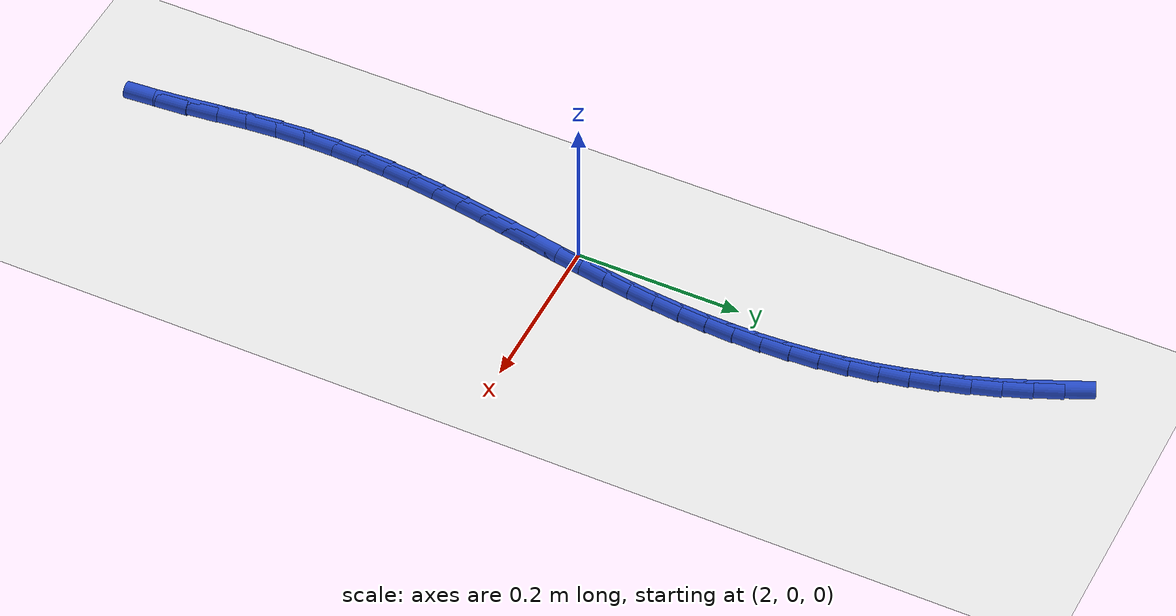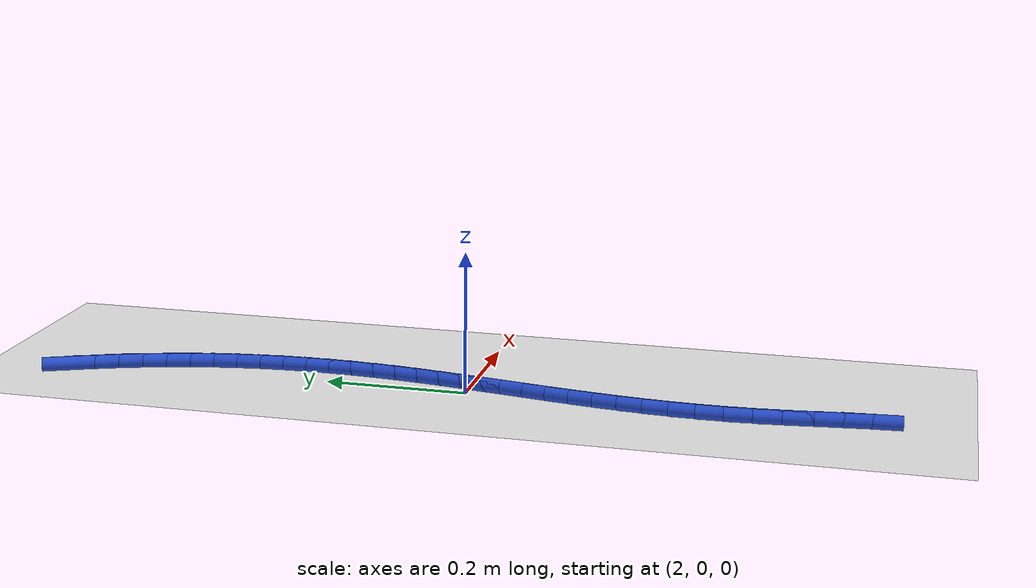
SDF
<sdf version="1.6">
 <world name="default">
  <model name="ground_plane">
   <static>1</static>
   <link name="link">
    <collision name="collision">
     <geometry><plane><normal>0 0 1</normal><size>100 100</size></plane></geometry>
     <surface><friction><ode><mu>100</mu><mu2>50</mu2></ode></friction></surface>
    </collision>
    <visual name="visual">
     <cast_shadows>0</cast_shadows>
     <geometry><plane><normal>0 0 1</normal><size>100 100</size></plane></geometry>
     <material>
      <script><uri>file://media/materials/scripts/gazebo.material</uri><name>Gazebo/WhiteGlow</name></script>
     </material>
    </visual>
   </link>
  </model>
  <model name="line">
   <link name="link_82">
    <pose>1.9597374480407297 0.5726535189243772 0.01 0 1.57 -1.1519916945636328</pose>
    <collision name="collision">
     <geometry><cylinder><radius>0.01</radius><length>0.08</length></cylinder></geometry>
    </collision>
    <visual name="visual">
     <material>
      <script><name>Gazebo/Blue</name><uri>file://media/materials/scripts/gazebo.material</uri></script>
     </material>
     <geometry><cylinder><radius>0.01</radius><length>0.08</length></cylinder></geometry>
    </visual>
   </link>
   <link name="link_83">
    <pose>1.973673618210855 0.5413461007436475 0.01 0 1.57 -1.1895600078728117</pose>
    <collision name="collision">
     <geometry><cylinder><radius>0.01</radius><length>0.08</length></cylinder></geometry>
    </collision>
    <visual name="visual">
     <material>
      <script><name>Gazebo/Blue</name><uri>file://media/materials/scripts/gazebo.material</uri></script>
     </material>
     <geometry><cylinder><radius>0.01</radius><length>0.08</length></cylinder></geometry>
    </visual>
   </link>
   <link name="link_84">
    <pose>1.9864185813727326 0.5095510173341959 0.01 0 1.57 -1.2279677283645591</pose>
    <collision name="collision">
     <geometry><cylinder><radius>0.01</radius><length>0.08</length></cylinder></geometry>
    </collision>
    <visual name="visual">
     <material>
      <script><name>Gazebo/Blue</name><uri>file://media/materials/scripts/gazebo.material</uri></script>
     </material>
     <geometry><cylinder><radius>0.01</radius><length>0.08</length></cylinder></geometry>
    </visual>
   </link>
   <link name="link_85">
    <pose>1.9979258740466765 0.47731071591242624 0.01 0 1.57 -1.2672920389887128</pose>
    <collision name="collision">
     <geometry><cylinder><radius>0.01</radius><length>0.08</length></cylinder></geometry>
    </collision>
    <visual name="visual">
     <material>
      <script><name>Gazebo/Blue</name><uri>file://media/materials/scripts/gazebo.material</uri></script>
     </material>
     <geometry><cylinder><radius>0.01</radius><length>0.08</length></cylinder></geometry>
    </visual>
   </link>
   <link name="link_86">
    <pose>2.008149032753002 0.4446676436947442 0.01 0 1.57 -1.3076029479805393</pose>
    <collision name="collision">
     <geometry><cylinder><radius>0.01</radius><length>0.08</length></cylinder></geometry>
    </collision>
    <visual name="visual">
     <material>
      <script><name>Gazebo/Blue</name><uri>file://media/materials/scripts/gazebo.material</uri></script>
     </material>
     <geometry><cylinder><radius>0.01</radius><length>0.08</length></cylinder></geometry>
    </visual>
   </link>
   <link name="link_87">
    <pose>2.017041594012023 0.41166424789755435 0.01 0 1.57 -1.3489616639740085</pose>
    <collision name="collision">
     <geometry><cylinder><radius>0.01</radius><length>0.08</length></cylinder></geometry>
    </collision>
    <visual name="visual">
     <material>
      <script><name>Gazebo/Blue</name><uri>file://media/materials/scripts/gazebo.material</uri></script>
     </material>
     <geometry><cylinder><radius>0.01</radius><length>0.08</length></cylinder></geometry>
    </visual>
   </link>
   <link name="link_88">
    <pose>2.0245570943440554 0.37834297573726194 0.01 0 1.57 -1.3914187105176206</pose>
    <collision name="collision">
     <geometry><cylinder><radius>0.01</radius><length>0.08</length></cylinder></geometry>
    </collision>
    <visual name="visual">
     <material>
      <script><name>Gazebo/Blue</name><uri>file://media/materials/scripts/gazebo.material</uri></script>
     </material>
     <geometry><cylinder><radius>0.01</radius><length>0.08</length></cylinder></geometry>
    </visual>
   </link>
   <link name="link_89">
    <pose>2.0306490702694138 0.34474627443027167 0.01 0 1.57 -1.4350118099287503</pose>
    <collision name="collision">
     <geometry><cylinder><radius>0.01</radius><length>0.08</length></cylinder></geometry>
    </collision>
    <visual name="visual">
     <material>
      <script><name>Gazebo/Blue</name><uri>file://media/materials/scripts/gazebo.material</uri></script>
     </material>
     <geometry><cylinder><radius>0.01</radius><length>0.08</length></cylinder></geometry>
    </visual>
   </link>
   <link name="link_90">
    <pose>2.035271058308414 0.31091659119298864 0.01 0 1.57 -1.4790302950021879</pose>
    <collision name="collision">
     <geometry><cylinder><radius>0.01</radius><length>0.08</length></cylinder></geometry>
    </collision>
    <visual name="visual">
     <material>
      <script><name>Gazebo/Blue</name><uri>file://media/materials/scripts/gazebo.material</uri></script>
     </material>
     <geometry><cylinder><radius>0.01</radius><length>0.08</length></cylinder></geometry>
    </visual>
   </link>
   <link name="link_91">
    <pose>2.0384007760192016 0.27690697356557864 0.01 0 1.57 -1.5205959344199704</pose>
    <collision name="collision">
     <geometry><cylinder><radius>0.01</radius><length>0.08</length></cylinder></geometry>
    </collision>
    <visual name="visual">
     <material>
      <script><name>Gazebo/Blue</name><uri>file://media/materials/scripts/gazebo.material</uri></script>
     </material>
     <geometry><cylinder><radius>0.01</radius><length>0.08</length></cylinder></geometry>
    </visual>
   </link>
   <link name="link_92">
    <pose>2.0401137291290508 0.24281333682035064 0.01 0 1.57 -1.5591619922287874</pose>
    <collision name="collision">
     <geometry><cylinder><radius>0.01</radius><length>0.08</length></cylinder></geometry>
    </collision>
    <visual name="visual">
     <material>
      <script><name>Gazebo/Blue</name><uri>file://media/materials/scripts/gazebo.material</uri></script>
     </material>
     <geometry><cylinder><radius>0.01</radius><length>0.08</length></cylinder></geometry>
    </visual>
   </link>
   <link name="link_93">
    <pose>2.0405101393316234 0.2087424310518238 0.01 0 1.57 1.5466443771229441</pose>
    <collision name="collision">
     <geometry><cylinder><radius>0.01</radius><length>0.08</length></cylinder></geometry>
    </collision>
    <visual name="visual">
     <material>
      <script><name>Gazebo/Blue</name><uri>file://media/materials/scripts/gazebo.material</uri></script>
     </material>
     <geometry><cylinder><radius>0.01</radius><length>0.08</length></cylinder></geometry>
    </visual>
   </link>
   <link name="link_94">
    <pose>2.039690228321765 0.17480100635503662 0.01 0 1.57 1.5134198405584383</pose>
    <collision name="collision">
     <geometry><cylinder><radius>0.01</radius><length>0.08</length></cylinder></geometry>
    </collision>
    <visual name="visual">
     <material>
      <script><name>Gazebo/Blue</name><uri>file://media/materials/scripts/gazebo.material</uri></script>
     </material>
     <geometry><cylinder><radius>0.01</radius><length>0.08</length></cylinder></geometry>
    </visual>
   </link>
   <link name="link_95">
    <pose>2.0377542177943213 0.14109581282502798 0.01 0 1.57 1.4826137024866053</pose>
    <collision name="collision">
     <geometry><cylinder><radius>0.01</radius><length>0.08</length></cylinder></geometry>
    </collision>
    <visual name="visual">
     <material>
      <script><name>Gazebo/Blue</name><uri>file://media/materials/scripts/gazebo.material</uri></script>
     </material>
     <geometry><cylinder><radius>0.01</radius><length>0.08</length></cylinder></geometry>
    </visual>
   </link>
   <link name="link_96">
    <pose>2.034804154476526 0.10772855212772789 0.01 0 1.57 1.4554028452550438</pose>
    <collision name="collision">
     <geometry><cylinder><radius>0.01</radius><length>0.08</length></cylinder></geometry>
    </collision>
    <visual name="visual">
     <material>
      <script><name>Gazebo/Blue</name><uri>file://media/materials/scripts/gazebo.material</uri></script>
     </material>
     <geometry><cylinder><radius>0.01</radius><length>0.08</length></cylinder></geometry>
    </visual>
   </link>
   <link name="link_97">
    <pose>2.0309765238570754 0.07470566096430814 0.01 0 1.57 1.4331372625225673</pose>
    <collision name="collision">
     <geometry><cylinder><radius>0.01</radius><length>0.08</length></cylinder></geometry>
    </collision>
    <visual name="visual">
     <material>
      <script><name>Gazebo/Blue</name><uri>file://media/materials/scripts/gazebo.material</uri></script>
     </material>
     <geometry><cylinder><radius>0.01</radius><length>0.08</length></cylinder></geometry>
    </visual>
   </link>
   <link name="link_98">
    <pose>2.0264385201469364 0.041948629155741116 0.01 0 1.57 1.416080445618828</pose>
    <collision name="collision">
     <geometry><cylinder><radius>0.01</radius><length>0.08</length></cylinder></geometry>
    </collision>
    <visual name="visual">
     <material>
      <script><name>Gazebo/Blue</name><uri>file://media/materials/scripts/gazebo.material</uri></script>
     </material>
     <geometry><cylinder><radius>0.01</radius><length>0.08</length></cylinder></geometry>
    </visual>
   </link>
   <link name="link_99">
    <pose>2.0213584135070524 0.009375970215715717 0.01 0 1.57 1.404380058155304</pose>
    <collision name="collision">
     <geometry><cylinder><radius>0.01</radius><length>0.08</length></cylinder></geometry>
    </collision>
    <visual name="visual">
     <material>
      <script><name>Gazebo/Blue</name><uri>file://media/materials/scripts/gazebo.material</uri></script>
     </material>
     <geometry><cylinder><radius>0.01</radius><length>0.08</length></cylinder></geometry>
    </visual>
   </link>
   <link name="link_100">
    <pose>2.015904474098365 -0.023093802342079157 0.01 0 1.57 1.3981177621960856</pose>
    <collision name="collision">
     <geometry><cylinder><radius>0.01</radius><length>0.08</length></cylinder></geometry>
    </collision>
    <visual name="visual">
     <material>
      <script><name>Gazebo/Blue</name><uri>file://media/materials/scripts/gazebo.material</uri></script>
     </material>
     <geometry><cylinder><radius>0.01</radius><length>0.08</length></cylinder></geometry>
    </visual>
   </link>
   <link name="link_101">
    <pose>2.0102449720818156 -0.055542175003954586 0.01 0 1.57 1.3973174413814424</pose>
    <collision name="collision">
     <geometry><cylinder><radius>0.01</radius><length>0.08</length></cylinder></geometry>
    </collision>
    <visual name="visual">
     <material>
      <script><name>Gazebo/Blue</name><uri>file://media/materials/scripts/gazebo.material</uri></script>
     </material>
     <geometry><cylinder><radius>0.01</radius><length>0.08</length></cylinder></geometry>
    </visual>
   </link>
   <link name="link_102">
    <pose>2.0045481776183487 -0.08805063425622164 0.01 0 1.57 1.4019504263547662</pose>
    <collision name="collision">
     <geometry><cylinder><radius>0.01</radius><length>0.08</length></cylinder></geometry>
    </collision>
    <visual name="visual">
     <material>
      <script><name>Gazebo/Blue</name><uri>file://media/materials/scripts/gazebo.material</uri></script>
     </material>
     <geometry><cylinder><radius>0.01</radius><length>0.08</length></cylinder></geometry>
    </visual>
   </link>
   <link name="link_103">
    <pose>1.998982360868906 -0.12070066658519149 0.01 0 1.57 1.4119371784986359</pose>
    <collision name="collision">
     <geometry><cylinder><radius>0.01</radius><length>0.08</length></cylinder></geometry>
    </collision>
    <visual name="visual">
     <material>
      <script><name>Gazebo/Blue</name><uri>file://media/materials/scripts/gazebo.material</uri></script>
     </material>
     <geometry><cylinder><radius>0.01</radius><length>0.08</length></cylinder></geometry>
    </visual>
   </link>
   <link name="link_104">
    <pose>1.99371579199443 -0.15357375847717517 0.01 0 1.57 1.4271455045176464</pose>
    <collision name="collision">
     <geometry><cylinder><radius>0.01</radius><length>0.08</length></cylinder></geometry>
    </collision>
    <visual name="visual">
     <material>
      <script><name>Gazebo/Blue</name><uri>file://media/materials/scripts/gazebo.material</uri></script>
     </material>
     <geometry><cylinder><radius>0.01</radius><length>0.08</length></cylinder></geometry>
    </visual>
   </link>
   <link name="link_105">
    <pose>1.9889167411558621 -0.18675139641848368 0.01 0 1.57 1.4473859421635398</pose>
    <collision name="collision">
     <geometry><cylinder><radius>0.01</radius><length>0.08</length></cylinder></geometry>
    </collision>
    <visual name="visual">
     <material>
      <script><name>Gazebo/Blue</name><uri>file://media/materials/scripts/gazebo.material</uri></script>
     </material>
     <geometry><cylinder><radius>0.01</radius><length>0.08</length></cylinder></geometry>
    </visual>
   </link>
   <link name="link_106">
    <pose>1.9847534785141465 -0.2203150668954283 0.01 0 1.57 1.4724054844588195</pose>
    <collision name="collision">
     <geometry><cylinder><radius>0.01</radius><length>0.08</length></cylinder></geometry>
    </collision>
    <visual name="visual">
     <material>
      <script><name>Gazebo/Blue</name><uri>file://media/materials/scripts/gazebo.material</uri></script>
     </material>
     <geometry><cylinder><radius>0.01</radius><length>0.08</length></cylinder></geometry>
    </visual>
   </link>
   <link name="link_107">
    <pose>1.9813942742302246 -0.25434625639431996 0.01 0 1.57 1.5018812753553503</pose>
    <collision name="collision">
     <geometry><cylinder><radius>0.01</radius><length>0.08</length></cylinder></geometry>
    </collision>
    <visual name="visual">
     <material>
      <script><name>Gazebo/Blue</name><uri>file://media/materials/scripts/gazebo.material</uri></script>
     </material>
     <geometry><cylinder><radius>0.01</radius><length>0.08</length></cylinder></geometry>
    </visual>
   </link>
   <link name="link_108">
    <pose>1.9790073984650391 -0.2889264514014699 0.01 0 1.57 1.5354162436736993</pose>
    <collision name="collision">
     <geometry><cylinder><radius>0.01</radius><length>0.08</length></cylinder></geometry>
    </collision>
    <visual name="visual">
     <material>
      <script><name>Gazebo/Blue</name><uri>file://media/materials/scripts/gazebo.material</uri></script>
     </material>
     <geometry><cylinder><radius>0.01</radius><length>0.08</length></cylinder></geometry>
    </visual>
   </link>
   <link name="link_109">
    <pose>1.977761121379533 -0.32413713840318903 0.01 0 1.57 -1.5690539256970948</pose>
    <collision name="collision">
     <geometry><cylinder><radius>0.01</radius><length>0.08</length></cylinder></geometry>
    </collision>
    <visual name="visual">
     <material>
      <script><name>Gazebo/Blue</name><uri>file://media/materials/scripts/gazebo.material</uri></script>
     </material>
     <geometry><cylinder><radius>0.01</radius><length>0.08</length></cylinder></geometry>
    </visual>
   </link>
   <link name="link_110">
    <pose>1.9778237131346479 -0.3600598038857886 0.01 0 1.57 -1.5288847996047474</pose>
    <collision name="collision">
     <geometry><cylinder><radius>0.01</radius><length>0.08</length></cylinder></geometry>
    </collision>
    <visual name="visual">
     <material>
      <script><name>Gazebo/Blue</name><uri>file://media/materials/scripts/gazebo.material</uri></script>
     </material>
     <geometry><cylinder><radius>0.01</radius><length>0.08</length></cylinder></geometry>
    </visual>
   </link>
   <link name="link_111">
    <pose>1.979363443891327 -0.39677593433557967 0.01 0 1.57 -1.4867346408441293</pose>
    <collision name="collision">
     <geometry><cylinder><radius>0.01</radius><length>0.08</length></cylinder></geometry>
    </collision>
    <visual name="visual">
     <material>
      <script><name>Gazebo/Blue</name><uri>file://media/materials/scripts/gazebo.material</uri></script>
     </material>
     <geometry><cylinder><radius>0.01</radius><length>0.08</length></cylinder></geometry>
    </visual>
   </link>
   <link name="link_112">
    <pose>1.9825298243441236 -0.43435451288001187 0.01 0 1.57 -1.4552524691260293</pose>
    <collision name="collision">
     <geometry><cylinder><radius>0.01</radius><length>0.08</length></cylinder></geometry>
    </collision>
    <visual name="visual">
     <material>
      <script><name>Gazebo/Blue</name><uri>file://media/materials/scripts/gazebo.material</uri></script>
     </material>
     <geometry><cylinder><radius>0.01</radius><length>0.08</length></cylinder></geometry>
    </visual>
   </link>
   <link name="link_113">
    <pose>1.986959666930043 -0.47252280448841977 0.01 0 1.57 -1.4463390553615048</pose>
    <collision name="collision">
     <geometry><cylinder><radius>0.01</radius><length>0.08</length></cylinder></geometry>
    </collision>
    <visual name="visual">
     <material>
      <script><name>Gazebo/Blue</name><uri>file://media/materials/scripts/gazebo.material</uri></script>
     </material>
     <geometry><cylinder><radius>0.01</radius><length>0.08</length></cylinder></geometry>
    </visual>
   </link>
   <link name="link_114">
    <pose>1.9917274328684897 -0.5106332618122427 0.01 0 1.57 -1.4602067201040518</pose>
    <collision name="collision">
     <geometry><cylinder><radius>0.01</radius><length>0.08</length></cylinder></geometry>
    </collision>
    <visual name="visual">
     <material>
      <script><name>Gazebo/Blue</name><uri>file://media/materials/scripts/gazebo.material</uri></script>
     </material>
     <geometry><cylinder><radius>0.01</radius><length>0.08</length></cylinder></geometry>
    </visual>
   </link>
   <link name="link_115">
    <pose>1.9958788667119887 -0.5480191975773024 0.01 0 1.57 -1.4992181426053675</pose>
    <collision name="collision">
     <geometry><cylinder><radius>0.01</radius><length>0.08</length></cylinder></geometry>
    </collision>
    <visual name="visual">
     <material>
      <script><name>Gazebo/Blue</name><uri>file://media/materials/scripts/gazebo.material</uri></script>
     </material>
     <geometry><cylinder><radius>0.01</radius><length>0.08</length></cylinder></geometry>
    </visual>
   </link>
  </model>
 </world>
</sdf>
